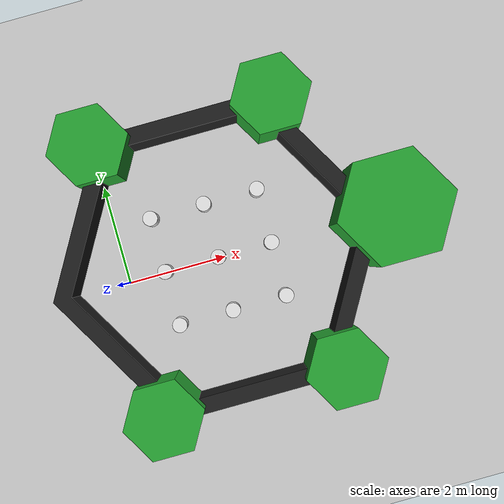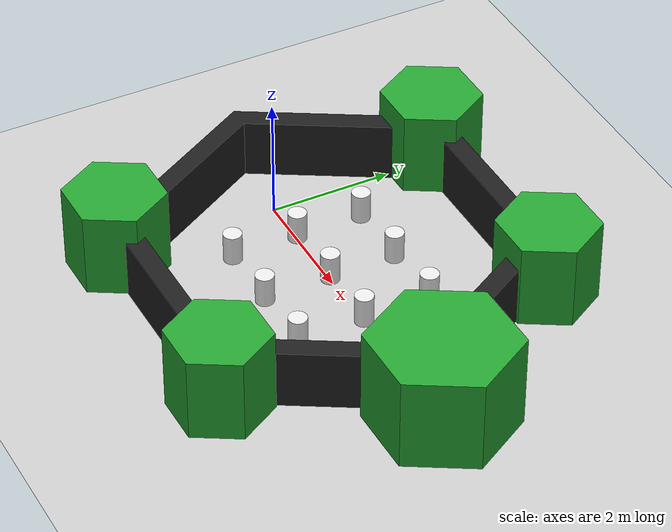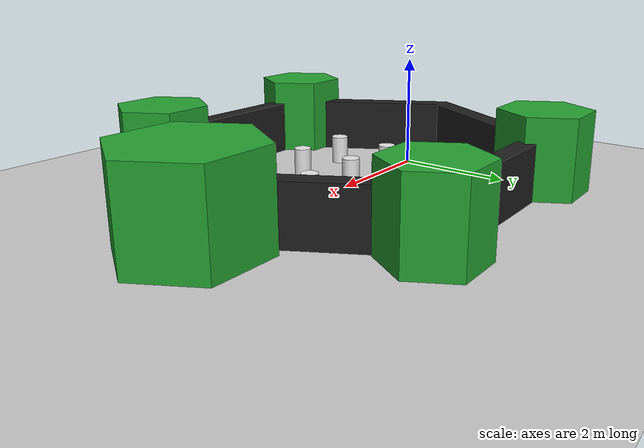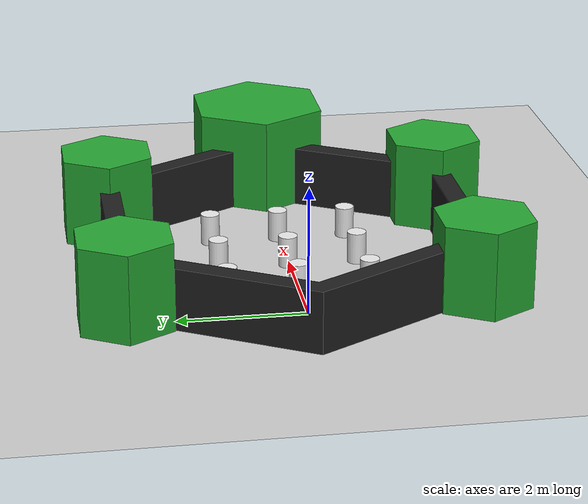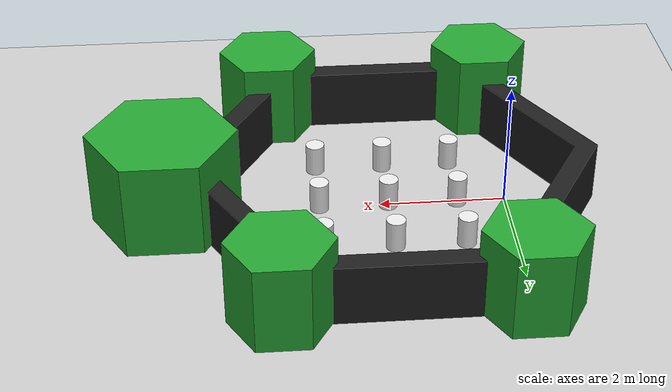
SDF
<sdf version="1.7">
 <world name="default">
  <gravity>0 0 -9.81</gravity>
  <light name="sun" type="directional">
   <pose>0 0 10 0 -0 0</pose>
   <diffuse>0.8 0.8 0.8 1</diffuse>
   <specular>0.2 0.2 0.2 1</specular>
   <attenuation>
    <range>1000</range>
    <constant>0.9</constant>
    <linear>0.01</linear>
    <quadratic>0.001</quadratic>
   </attenuation>
   <direction>-0.5 0.1 -0.9</direction>
   <spot><inner_angle>0</inner_angle><outer_angle>0</outer_angle><falloff>0</falloff></spot>
  </light>
  <physics name="ode_200iters" type="ode">
   <max_step_size>0.001</max_step_size>
   <real_time_factor>1</real_time_factor>
   <real_time_update_rate>1000</real_time_update_rate>
   <ode>
    <solver>
     <type>quick</type>
     <iters>500</iters>
     <sor>1.3</sor>
     <use_dynamic_moi_rescaling>0</use_dynamic_moi_rescaling>
    </solver>
    <constraints>
     <cfm>0</cfm>
     <erp>0.2</erp>
     <contact_max_correcting_vel>100</contact_max_correcting_vel>
     <contact_surface_layer>0.001</contact_surface_layer>
    </constraints>
   </ode>
  </physics>
  <model name="ground_plane">
   <static>1</static>
   <link name="link">
    <collision name="collision">
     <geometry><plane><normal>0 0 1</normal><size>100 100</size></plane></geometry>
     <surface>
      <contact><collide_bitmask>65535</collide_bitmask></contact>
      <friction><ode><mu>100</mu><mu2>50</mu2><fdir1>1 1 0</fdir1></ode></friction>
     </surface>
    </collision>
    <visual name="visual">
     <cast_shadows>0</cast_shadows>
     <geometry><plane><normal>0 0 1</normal><size>100 100</size></plane></geometry>
     <material>
      <script><uri>file://media/materials/scripts/gazebo.material</uri><name>Gazebo/Grey</name></script>
     </material>
    </visual>
   </link>
  </model>
  <magnetic_field>6e-06 2.3e-05 -4.2e-05</magnetic_field>
  <atmosphere type="adiabatic"/>
  <scene><ambient>0.4 0.4 0.4 1</ambient><background>0.7 0.7 0.7 1</background><shadows>1</shadows></scene>
  <audio><device>default</device></audio>
  <spherical_coordinates>
   <surface_model>EARTH_WGS84</surface_model>
   <latitude_deg>0</latitude_deg>
   <longitude_deg>0</longitude_deg>
   <elevation>0</elevation>
   <heading_deg>0</heading_deg>
  </spherical_coordinates>
  <model name="ros_symbol">
   <static>1</static>
   <link name="symbol">
    <collision name="one_one">
     <pose>-1.1 -1.1 0.25 0 -0 0</pose>
     <geometry><cylinder><radius>0.15</radius><length>0.5</length></cylinder></geometry>
    </collision>
    <visual name="one_one">
     <pose>-1.1 -1.1 0.25 0 -0 0</pose>
     <geometry><cylinder><radius>0.15</radius><length>0.5</length></cylinder></geometry>
     <material>
      <script><uri>file://media/materials/scripts/gazebo.material</uri><name>Gazebo/White</name></script>
     </material>
    </visual>
    <collision name="one_two">
     <pose>-1.1 0 0.25 0 -0 0</pose>
     <geometry><cylinder><radius>0.15</radius><length>0.5</length></cylinder></geometry>
    </collision>
    <visual name="one_two">
     <pose>-1.1 0 0.25 0 -0 0</pose>
     <geometry><cylinder><radius>0.15</radius><length>0.5</length></cylinder></geometry>
     <material>
      <script><uri>file://media/materials/scripts/gazebo.material</uri><name>Gazebo/White</name></script>
     </material>
    </visual>
    <collision name="one_three">
     <pose>-1.1 1.1 0.25 0 -0 0</pose>
     <geometry><cylinder><radius>0.15</radius><length>0.5</length></cylinder></geometry>
    </collision>
    <visual name="one_three">
     <pose>-1.1 1.1 0.25 0 -0 0</pose>
     <geometry><cylinder><radius>0.15</radius><length>0.5</length></cylinder></geometry>
     <material>
      <script><uri>file://media/materials/scripts/gazebo.material</uri><name>Gazebo/White</name></script>
     </material>
    </visual>
    <collision name="two_one">
     <pose>0 -1.1 0.25 0 -0 0</pose>
     <geometry><cylinder><radius>0.15</radius><length>0.5</length></cylinder></geometry>
    </collision>
    <visual name="two_one">
     <pose>0 -1.1 0.25 0 -0 0</pose>
     <geometry><cylinder><radius>0.15</radius><length>0.5</length></cylinder></geometry>
     <material>
      <script><uri>file://media/materials/scripts/gazebo.material</uri><name>Gazebo/White</name></script>
     </material>
    </visual>
    <collision name="two_two">
     <pose>0 0 0.25 0 -0 0</pose>
     <geometry><cylinder><radius>0.15</radius><length>0.5</length></cylinder></geometry>
    </collision>
    <visual name="two_two">
     <pose>0 0 0.25 0 -0 0</pose>
     <geometry><cylinder><radius>0.15</radius><length>0.5</length></cylinder></geometry>
     <material>
      <script><uri>file://media/materials/scripts/gazebo.material</uri><name>Gazebo/White</name></script>
     </material>
    </visual>
    <collision name="two_three">
     <pose>0 1.1 0.25 0 -0 0</pose>
     <geometry><cylinder><radius>0.15</radius><length>0.5</length></cylinder></geometry>
    </collision>
    <visual name="two_three">
     <pose>0 1.1 0.25 0 -0 0</pose>
     <geometry><cylinder><radius>0.15</radius><length>0.5</length></cylinder></geometry>
     <material>
      <script><uri>file://media/materials/scripts/gazebo.material</uri><name>Gazebo/White</name></script>
     </material>
    </visual>
    <collision name="three_one">
     <pose>1.1 -1.1 0.25 0 -0 0</pose>
     <geometry><cylinder><radius>0.15</radius><length>0.5</length></cylinder></geometry>
    </collision>
    <visual name="three_one">
     <pose>1.1 -1.1 0.25 0 -0 0</pose>
     <geometry><cylinder><radius>0.15</radius><length>0.5</length></cylinder></geometry>
     <material>
      <script><uri>file://media/materials/scripts/gazebo.material</uri><name>Gazebo/White</name></script>
     </material>
    </visual>
    <collision name="three_two">
     <pose>1.1 0 0.25 0 -0 0</pose>
     <geometry><cylinder><radius>0.15</radius><length>0.5</length></cylinder></geometry>
    </collision>
    <visual name="three_two">
     <pose>1.1 0 0.25 0 -0 0</pose>
     <geometry><cylinder><radius>0.15</radius><length>0.5</length></cylinder></geometry>
     <material>
      <script><uri>file://media/materials/scripts/gazebo.material</uri><name>Gazebo/White</name></script>
     </material>
    </visual>
    <collision name="three_three">
     <pose>1.1 1.1 0.25 0 -0 0</pose>
     <geometry><cylinder><radius>0.15</radius><length>0.5</length></cylinder></geometry>
    </collision>
    <visual name="three_three">
     <pose>1.1 1.1 0.25 0 -0 0</pose>
     <geometry><cylinder><radius>0.15</radius><length>0.5</length></cylinder></geometry>
     <material>
      <script><uri>file://media/materials/scripts/gazebo.material</uri><name>Gazebo/White</name></script>
     </material>
    </visual>
    <collision name="head">
     <pose>3.5 0 -0.5 0 -0 0</pose>
     <geometry>
      <mesh><uri>model://turtlebot3_world/meshes/hexagon.dae</uri><scale>0.8 0.8 0.8</scale></mesh>
     </geometry>
    </collision>
    <visual name="head">
     <pose>3.5 0 -0.5 0 -0 0</pose>
     <geometry>
      <mesh><uri>model://turtlebot3_world/meshes/hexagon.dae</uri><scale>0.8 0.8 0.8</scale></mesh>
     </geometry>
     <material>
      <script><uri>file://media/materials/scripts/gazebo.material</uri><name>Gazebo/Green</name></script>
     </material>
    </visual>
    <collision name="left_hand">
     <pose>1.8 2.7 0 0 -0 0</pose>
     <geometry>
      <mesh><uri>model://turtlebot3_world/meshes/hexagon.dae</uri><scale>0.55 0.55 0.55</scale></mesh>
     </geometry>
    </collision>
    <visual name="left_hand">
     <pose>1.8 2.7 0 0 -0 0</pose>
     <geometry>
      <mesh><uri>model://turtlebot3_world/meshes/hexagon.dae</uri><scale>0.55 0.55 0.55</scale></mesh>
     </geometry>
     <material>
      <script><uri>file://media/materials/scripts/gazebo.material</uri><name>Gazebo/Green</name></script>
     </material>
    </visual>
    <collision name="right_hand">
     <pose>1.8 -2.7 0 0 -0 0</pose>
     <geometry>
      <mesh><uri>model://turtlebot3_world/meshes/hexagon.dae</uri><scale>0.55 0.55 0.55</scale></mesh>
     </geometry>
    </collision>
    <visual name="right_hand">
     <pose>1.8 -2.7 0 0 -0 0</pose>
     <geometry>
      <mesh><uri>model://turtlebot3_world/meshes/hexagon.dae</uri><scale>0.55 0.55 0.55</scale></mesh>
     </geometry>
     <material>
      <script><uri>file://media/materials/scripts/gazebo.material</uri><name>Gazebo/Green</name></script>
     </material>
    </visual>
    <collision name="left_foot">
     <pose>-1.8 2.7 0 0 -0 0</pose>
     <geometry>
      <mesh><uri>model://turtlebot3_world/meshes/hexagon.dae</uri><scale>0.55 0.55 0.55</scale></mesh>
     </geometry>
    </collision>
    <visual name="left_foot">
     <pose>-1.8 2.7 0 0 -0 0</pose>
     <geometry>
      <mesh><uri>model://turtlebot3_world/meshes/hexagon.dae</uri><scale>0.55 0.55 0.55</scale></mesh>
     </geometry>
     <material>
      <script><uri>file://media/materials/scripts/gazebo.material</uri><name>Gazebo/Green</name></script>
     </material>
    </visual>
    <collision name="right_foot">
     <pose>-1.8 -2.7 0 0 -0 0</pose>
     <geometry>
      <mesh><uri>model://turtlebot3_world/meshes/hexagon.dae</uri><scale>0.55 0.55 0.55</scale></mesh>
     </geometry>
    </collision>
    <visual name="right_foot">
     <pose>-1.8 -2.7 0 0 -0 0</pose>
     <geometry>
      <mesh><uri>model://turtlebot3_world/meshes/hexagon.dae</uri><scale>0.55 0.55 0.55</scale></mesh>
     </geometry>
     <material>
      <script><uri>file://media/materials/scripts/gazebo.material</uri><name>Gazebo/Green</name></script>
     </material>
    </visual>
    <collision name="body">
     <pose>0 0 -0.3 0 0 -1.5708</pose>
     <geometry>
      <mesh><uri>model://turtlebot3_world/meshes/wall.dae</uri><scale>0.25 0.25 0.25</scale></mesh>
     </geometry>
    </collision>
    <visual name="body">
     <pose>0 0 -0.3 0 0 -1.5708</pose>
     <geometry>
      <mesh><uri>model://turtlebot3_world/meshes/wall.dae</uri><scale>0.25 0.25 0.25</scale></mesh>
     </geometry>
     <material>
      <script><uri>file://media/materials/scripts/gazebo.material</uri><name>Gazebo/FlatBlack</name></script>
     </material>
    </visual>
   </link>
   <pose>1.87071 0.024968 0 0 -0 0</pose>
  </model>
 </world>
</sdf>
